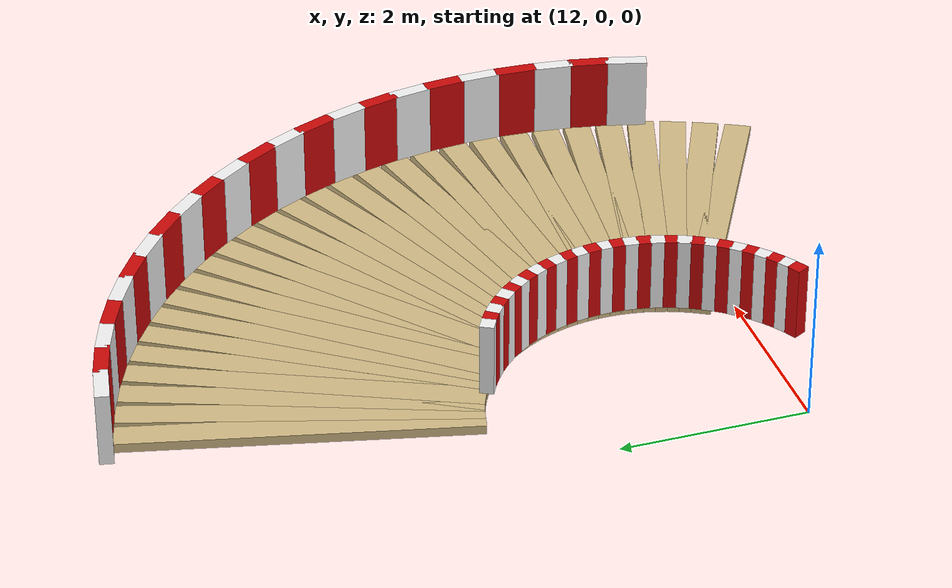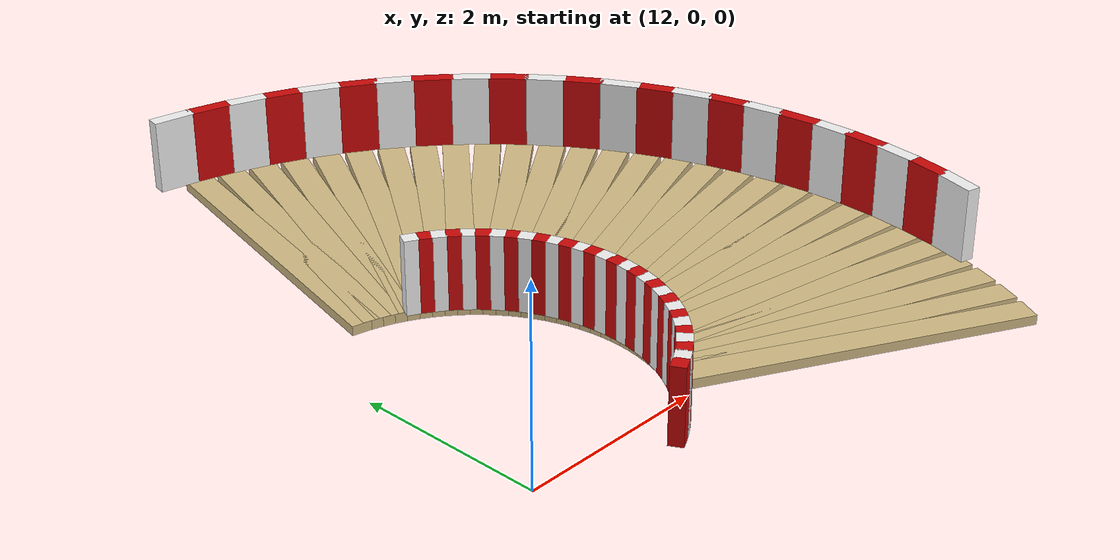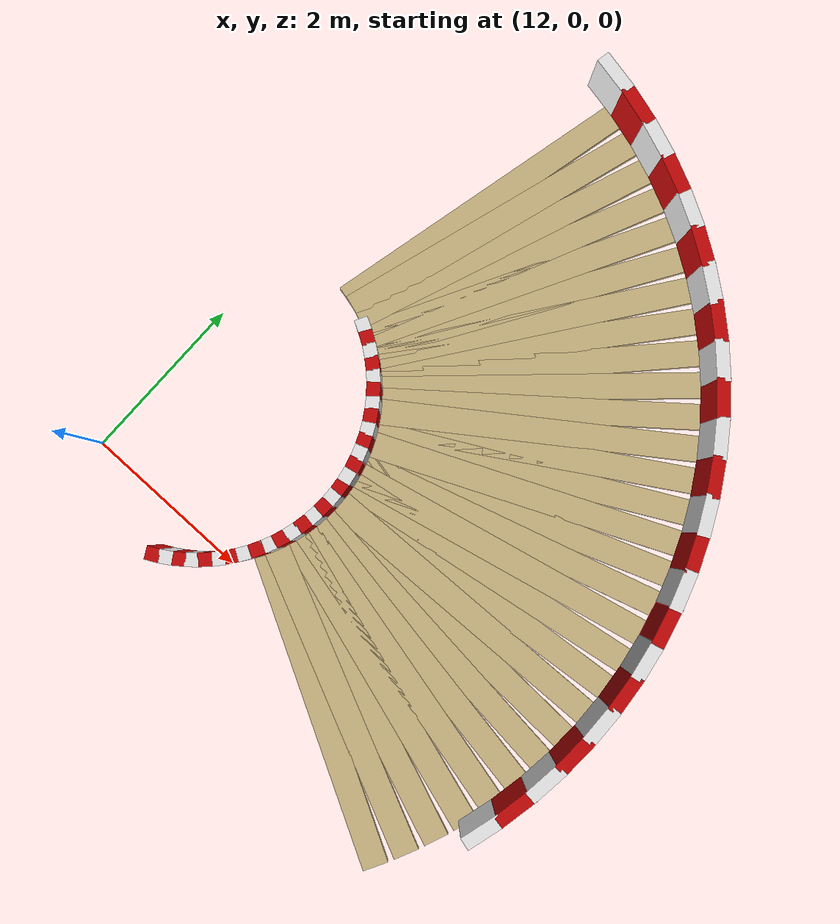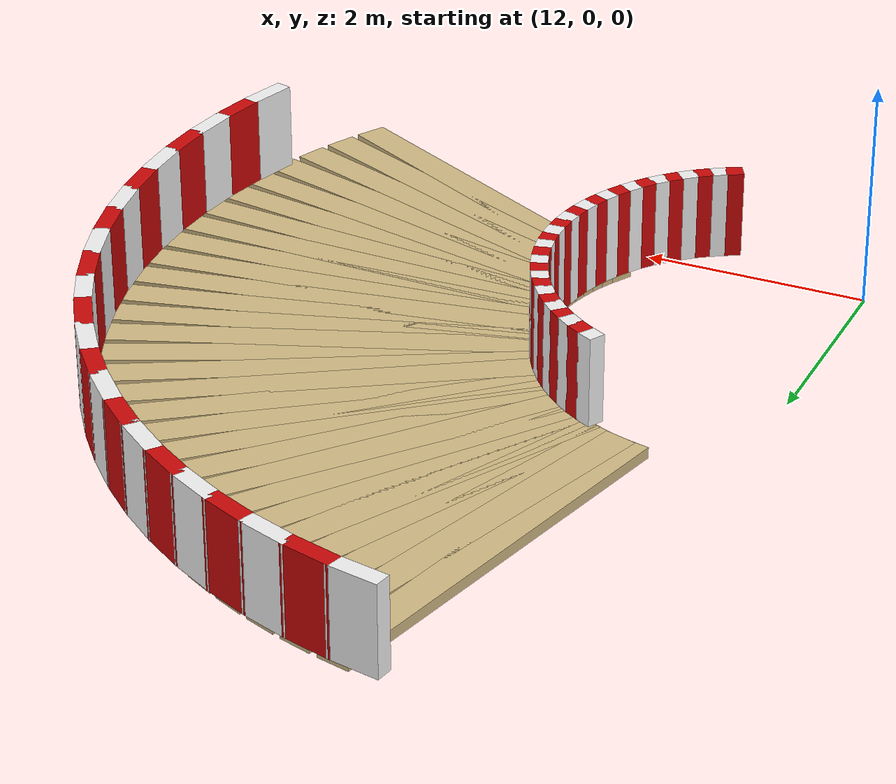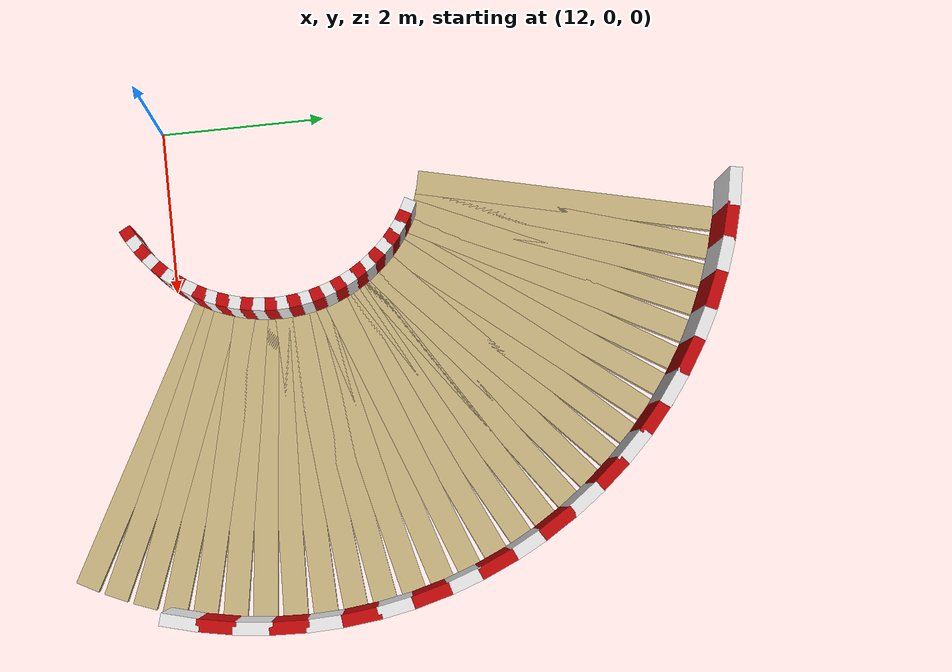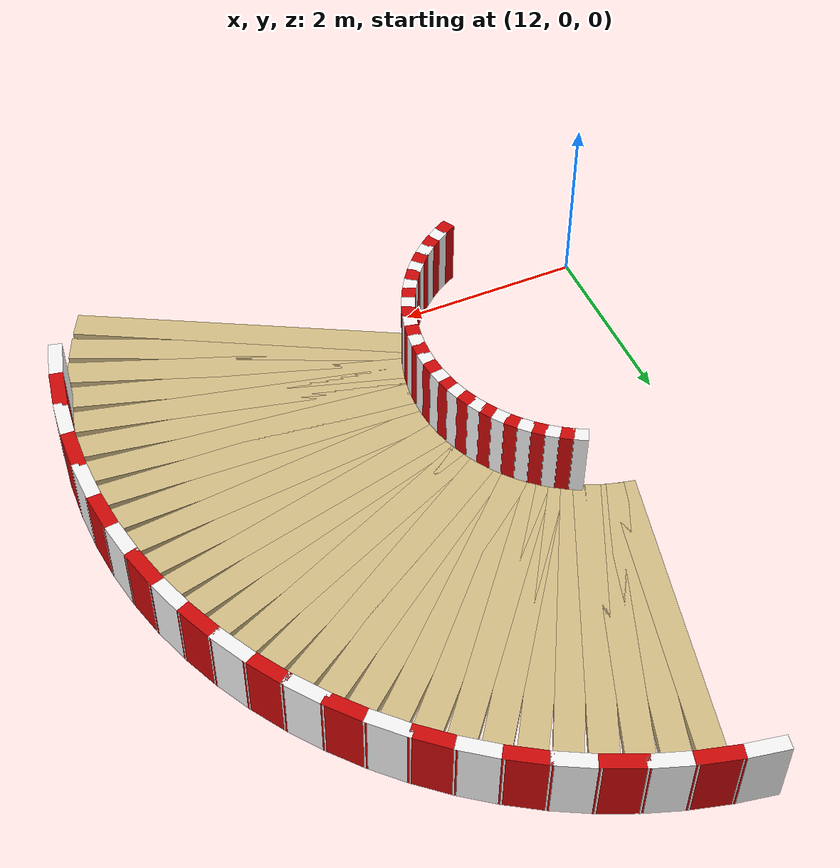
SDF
<sdf version="1.6">
 <world name="evrenos_teknofest_2026">
  <include><uri>model://sun</uri></include>
  <model name="main_course">
   <static>true</static>
   <link name="right_turn_road_16">
    <pose>15.807250 -0.517750 -0.050000 0.000000 0.000000 1.079922</pose>
    <collision name="right_turn_road_16_collision">
     <geometry><box><size>0.294500 3.750000 0.100000</size></box></geometry>
    </collision>
    <visual name="right_turn_road_16_visual">
     <geometry><box><size>0.294500 3.750000 0.100000</size></box></geometry>
     <material><ambient>0.82 0.73 0.52 1</ambient><diffuse>0.82 0.73 0.52 1</diffuse></material>
    </visual>
   </link>
   <link name="right_turn_road_17">
    <pose>15.915750 -0.297625 -0.050000 0.000000 0.000000 1.145372</pose>
    <collision name="right_turn_road_17_collision">
     <geometry><box><size>0.294500 3.750000 0.100000</size></box></geometry>
    </collision>
    <visual name="right_turn_road_17_visual">
     <geometry><box><size>0.294500 3.750000 0.100000</size></box></geometry>
     <material><ambient>0.82 0.73 0.52 1</ambient><diffuse>0.82 0.73 0.52 1</diffuse></material>
    </visual>
   </link>
   <link name="right_turn_road_18">
    <pose>16.009625 -0.071000 -0.050000 0.000000 0.000000 1.210822</pose>
    <collision name="right_turn_road_18_collision">
     <geometry><box><size>0.294500 3.750000 0.100000</size></box></geometry>
    </collision>
    <visual name="right_turn_road_18_visual">
     <geometry><box><size>0.294500 3.750000 0.100000</size></box></geometry>
     <material><ambient>0.82 0.73 0.52 1</ambient><diffuse>0.82 0.73 0.52 1</diffuse></material>
    </visual>
   </link>
   <link name="right_turn_road_19">
    <pose>16.088500 0.161375 -0.050000 0.000000 0.000000 1.276272</pose>
    <collision name="right_turn_road_19_collision">
     <geometry><box><size>0.294500 3.750000 0.100000</size></box></geometry>
    </collision>
    <visual name="right_turn_road_19_visual">
     <geometry><box><size>0.294500 3.750000 0.100000</size></box></geometry>
     <material><ambient>0.82 0.73 0.52 1</ambient><diffuse>0.82 0.73 0.52 1</diffuse></material>
    </visual>
   </link>
   <link name="right_turn_road_20">
    <pose>16.152000 0.398500 -0.050000 0.000000 0.000000 1.341722</pose>
    <collision name="right_turn_road_20_collision">
     <geometry><box><size>0.294500 3.750000 0.100000</size></box></geometry>
    </collision>
    <visual name="right_turn_road_20_visual">
     <geometry><box><size>0.294500 3.750000 0.100000</size></box></geometry>
     <material><ambient>0.82 0.73 0.52 1</ambient><diffuse>0.82 0.73 0.52 1</diffuse></material>
    </visual>
   </link>
   <link name="right_turn_road_21">
    <pose>16.199875 0.639125 -0.050000 0.000000 0.000000 1.407172</pose>
    <collision name="right_turn_road_21_collision">
     <geometry><box><size>0.294500 3.750000 0.100000</size></box></geometry>
    </collision>
    <visual name="right_turn_road_21_visual">
     <geometry><box><size>0.294500 3.750000 0.100000</size></box></geometry>
     <material><ambient>0.82 0.73 0.52 1</ambient><diffuse>0.82 0.73 0.52 1</diffuse></material>
    </visual>
   </link>
   <link name="right_turn_road_22">
    <pose>16.232000 0.882375 -0.050000 0.000000 0.000000 1.472622</pose>
    <collision name="right_turn_road_22_collision">
     <geometry><box><size>0.294500 3.750000 0.100000</size></box></geometry>
    </collision>
    <visual name="right_turn_road_22_visual">
     <geometry><box><size>0.294500 3.750000 0.100000</size></box></geometry>
     <material><ambient>0.82 0.73 0.52 1</ambient><diffuse>0.82 0.73 0.52 1</diffuse></material>
    </visual>
   </link>
   <link name="right_turn_road_23">
    <pose>16.248000 1.127250 -0.050000 0.000000 0.000000 1.538071</pose>
    <collision name="right_turn_road_23_collision">
     <geometry><box><size>0.294500 3.750000 0.100000</size></box></geometry>
    </collision>
    <visual name="right_turn_road_23_visual">
     <geometry><box><size>0.294500 3.750000 0.100000</size></box></geometry>
     <material><ambient>0.82 0.73 0.52 1</ambient><diffuse>0.82 0.73 0.52 1</diffuse></material>
    </visual>
   </link>
   <link name="right_turn_road_24">
    <pose>16.248000 1.372750 -0.050000 0.000000 0.000000 1.603521</pose>
    <collision name="right_turn_road_24_collision">
     <geometry><box><size>0.294500 3.750000 0.100000</size></box></geometry>
    </collision>
    <visual name="right_turn_road_24_visual">
     <geometry><box><size>0.294500 3.750000 0.100000</size></box></geometry>
     <material><ambient>0.82 0.73 0.52 1</ambient><diffuse>0.82 0.73 0.52 1</diffuse></material>
    </visual>
   </link>
   <link name="right_turn_road_25">
    <pose>16.232000 1.617625 -0.050000 0.000000 0.000000 1.668971</pose>
    <collision name="right_turn_road_25_collision">
     <geometry><box><size>0.294500 3.750000 0.100000</size></box></geometry>
    </collision>
    <visual name="right_turn_road_25_visual">
     <geometry><box><size>0.294500 3.750000 0.100000</size></box></geometry>
     <material><ambient>0.82 0.73 0.52 1</ambient><diffuse>0.82 0.73 0.52 1</diffuse></material>
    </visual>
   </link>
   <link name="right_turn_road_26">
    <pose>16.199875 1.860875 -0.050000 0.000000 0.000000 1.734421</pose>
    <collision name="right_turn_road_26_collision">
     <geometry><box><size>0.294500 3.750000 0.100000</size></box></geometry>
    </collision>
    <visual name="right_turn_road_26_visual">
     <geometry><box><size>0.294500 3.750000 0.100000</size></box></geometry>
     <material><ambient>0.82 0.73 0.52 1</ambient><diffuse>0.82 0.73 0.52 1</diffuse></material>
    </visual>
   </link>
   <link name="right_turn_road_27">
    <pose>16.152000 2.101500 -0.050000 0.000000 0.000000 1.799871</pose>
    <collision name="right_turn_road_27_collision">
     <geometry><box><size>0.294500 3.750000 0.100000</size></box></geometry>
    </collision>
    <visual name="right_turn_road_27_visual">
     <geometry><box><size>0.294500 3.750000 0.100000</size></box></geometry>
     <material><ambient>0.82 0.73 0.52 1</ambient><diffuse>0.82 0.73 0.52 1</diffuse></material>
    </visual>
   </link>
   <link name="right_turn_road_28">
    <pose>16.088500 2.338625 -0.050000 0.000000 0.000000 1.865321</pose>
    <collision name="right_turn_road_28_collision">
     <geometry><box><size>0.294500 3.750000 0.100000</size></box></geometry>
    </collision>
    <visual name="right_turn_road_28_visual">
     <geometry><box><size>0.294500 3.750000 0.100000</size></box></geometry>
     <material><ambient>0.82 0.73 0.52 1</ambient><diffuse>0.82 0.73 0.52 1</diffuse></material>
    </visual>
   </link>
   <link name="right_turn_road_29">
    <pose>16.009625 2.571000 -0.050000 0.000000 0.000000 1.930770</pose>
    <collision name="right_turn_road_29_collision">
     <geometry><box><size>0.294500 3.750000 0.100000</size></box></geometry>
    </collision>
    <visual name="right_turn_road_29_visual">
     <geometry><box><size>0.294500 3.750000 0.100000</size></box></geometry>
     <material><ambient>0.82 0.73 0.52 1</ambient><diffuse>0.82 0.73 0.52 1</diffuse></material>
    </visual>
   </link>
   <link name="right_turn_road_30">
    <pose>15.915750 2.797625 -0.050000 0.000000 0.000000 1.996220</pose>
    <collision name="right_turn_road_30_collision">
     <geometry><box><size>0.294500 3.750000 0.100000</size></box></geometry>
    </collision>
    <visual name="right_turn_road_30_visual">
     <geometry><box><size>0.294500 3.750000 0.100000</size></box></geometry>
     <material><ambient>0.82 0.73 0.52 1</ambient><diffuse>0.82 0.73 0.52 1</diffuse></material>
    </visual>
   </link>
   <link name="right_turn_road_31">
    <pose>15.807250 3.017750 -0.050000 0.000000 0.000000 2.061670</pose>
    <collision name="right_turn_road_31_collision">
     <geometry><box><size>0.294500 3.750000 0.100000</size></box></geometry>
    </collision>
    <visual name="right_turn_road_31_visual">
     <geometry><box><size>0.294500 3.750000 0.100000</size></box></geometry>
     <material><ambient>0.82 0.73 0.52 1</ambient><diffuse>0.82 0.73 0.52 1</diffuse></material>
    </visual>
   </link>
   <link name="right_turn_road_32">
    <pose>15.684500 3.230250 -0.050000 0.000000 0.000000 2.127120</pose>
    <collision name="right_turn_road_32_collision">
     <geometry><box><size>0.294500 3.750000 0.100000</size></box></geometry>
    </collision>
    <visual name="right_turn_road_32_visual">
     <geometry><box><size>0.294500 3.750000 0.100000</size></box></geometry>
     <material><ambient>0.82 0.73 0.52 1</ambient><diffuse>0.82 0.73 0.52 1</diffuse></material>
    </visual>
   </link>
   <link name="right_turn_road_33">
    <pose>15.548125 3.434250 -0.050000 0.000000 0.000000 2.192570</pose>
    <collision name="right_turn_road_33_collision">
     <geometry><box><size>0.294500 3.750000 0.100000</size></box></geometry>
    </collision>
    <visual name="right_turn_road_33_visual">
     <geometry><box><size>0.294500 3.750000 0.100000</size></box></geometry>
     <material><ambient>0.82 0.73 0.52 1</ambient><diffuse>0.82 0.73 0.52 1</diffuse></material>
    </visual>
   </link>
   <link name="right_turn_road_34">
    <pose>15.398750 3.629000 -0.050000 0.000000 0.000000 2.258020</pose>
    <collision name="right_turn_road_34_collision">
     <geometry><box><size>0.294500 3.750000 0.100000</size></box></geometry>
    </collision>
    <visual name="right_turn_road_34_visual">
     <geometry><box><size>0.294500 3.750000 0.100000</size></box></geometry>
     <material><ambient>0.82 0.73 0.52 1</ambient><diffuse>0.82 0.73 0.52 1</diffuse></material>
    </visual>
   </link>
   <link name="right_turn_road_35">
    <pose>15.237000 3.813500 -0.050000 0.000000 0.000000 2.323470</pose>
    <collision name="right_turn_road_35_collision">
     <geometry><box><size>0.294500 3.750000 0.100000</size></box></geometry>
    </collision>
    <visual name="right_turn_road_35_visual">
     <geometry><box><size>0.294500 3.750000 0.100000</size></box></geometry>
     <material><ambient>0.82 0.73 0.52 1</ambient><diffuse>0.82 0.73 0.52 1</diffuse></material>
    </visual>
   </link>
   <link name="right_turn_road_36">
    <pose>15.063500 3.987000 -0.050000 0.000000 0.000000 2.388919</pose>
    <collision name="right_turn_road_36_collision">
     <geometry><box><size>0.294500 3.750000 0.100000</size></box></geometry>
    </collision>
    <visual name="right_turn_road_36_visual">
     <geometry><box><size>0.294500 3.750000 0.100000</size></box></geometry>
     <material><ambient>0.82 0.73 0.52 1</ambient><diffuse>0.82 0.73 0.52 1</diffuse></material>
    </visual>
   </link>
   <link name="right_turn_road_37">
    <pose>14.879000 4.148750 -0.050000 0.000000 0.000000 2.454369</pose>
    <collision name="right_turn_road_37_collision">
     <geometry><box><size>0.294500 3.750000 0.100000</size></box></geometry>
    </collision>
    <visual name="right_turn_road_37_visual">
     <geometry><box><size>0.294500 3.750000 0.100000</size></box></geometry>
     <material><ambient>0.82 0.73 0.52 1</ambient><diffuse>0.82 0.73 0.52 1</diffuse></material>
    </visual>
   </link>
   <link name="right_turn_road_38">
    <pose>14.684250 4.298125 -0.050000 0.000000 0.000000 2.519819</pose>
    <collision name="right_turn_road_38_collision">
     <geometry><box><size>0.294500 3.750000 0.100000</size></box></geometry>
    </collision>
    <visual name="right_turn_road_38_visual">
     <geometry><box><size>0.294500 3.750000 0.100000</size></box></geometry>
     <material><ambient>0.82 0.73 0.52 1</ambient><diffuse>0.82 0.73 0.52 1</diffuse></material>
    </visual>
   </link>
   <link name="right_turn_road_39">
    <pose>14.480250 4.434500 -0.050000 0.000000 0.000000 2.585269</pose>
    <collision name="right_turn_road_39_collision">
     <geometry><box><size>0.294500 3.750000 0.100000</size></box></geometry>
    </collision>
    <visual name="right_turn_road_39_visual">
     <geometry><box><size>0.294500 3.750000 0.100000</size></box></geometry>
     <material><ambient>0.82 0.73 0.52 1</ambient><diffuse>0.82 0.73 0.52 1</diffuse></material>
    </visual>
   </link>
   <link name="right_turn_road_40">
    <pose>14.267750 4.557250 -0.050000 0.000000 0.000000 2.650719</pose>
    <collision name="right_turn_road_40_collision">
     <geometry><box><size>0.294500 3.750000 0.100000</size></box></geometry>
    </collision>
    <visual name="right_turn_road_40_visual">
     <geometry><box><size>0.294500 3.750000 0.100000</size></box></geometry>
     <material><ambient>0.82 0.73 0.52 1</ambient><diffuse>0.82 0.73 0.52 1</diffuse></material>
    </visual>
   </link>
   <link name="right_turn_road_41">
    <pose>14.047625 4.665750 -0.050000 0.000000 0.000000 2.716169</pose>
    <collision name="right_turn_road_41_collision">
     <geometry><box><size>0.294500 3.750000 0.100000</size></box></geometry>
    </collision>
    <visual name="right_turn_road_41_visual">
     <geometry><box><size>0.294500 3.750000 0.100000</size></box></geometry>
     <material><ambient>0.82 0.73 0.52 1</ambient><diffuse>0.82 0.73 0.52 1</diffuse></material>
    </visual>
   </link>
   <link name="right_turn_road_42">
    <pose>13.821000 4.759625 -0.050000 0.000000 0.000000 2.781618</pose>
    <collision name="right_turn_road_42_collision">
     <geometry><box><size>0.294500 3.750000 0.100000</size></box></geometry>
    </collision>
    <visual name="right_turn_road_42_visual">
     <geometry><box><size>0.294500 3.750000 0.100000</size></box></geometry>
     <material><ambient>0.82 0.73 0.52 1</ambient><diffuse>0.82 0.73 0.52 1</diffuse></material>
    </visual>
   </link>
   <link name="right_turn_road_43">
    <pose>13.588625 4.838500 -0.050000 0.000000 0.000000 2.847068</pose>
    <collision name="right_turn_road_43_collision">
     <geometry><box><size>0.294500 3.750000 0.100000</size></box></geometry>
    </collision>
    <visual name="right_turn_road_43_visual">
     <geometry><box><size>0.294500 3.750000 0.100000</size></box></geometry>
     <material><ambient>0.82 0.73 0.52 1</ambient><diffuse>0.82 0.73 0.52 1</diffuse></material>
    </visual>
   </link>
   <link name="right_turn_road_44">
    <pose>13.351500 4.902000 -0.050000 0.000000 0.000000 2.912518</pose>
    <collision name="right_turn_road_44_collision">
     <geometry><box><size>0.294500 3.750000 0.100000</size></box></geometry>
    </collision>
    <visual name="right_turn_road_44_visual">
     <geometry><box><size>0.294500 3.750000 0.100000</size></box></geometry>
     <material><ambient>0.82 0.73 0.52 1</ambient><diffuse>0.82 0.73 0.52 1</diffuse></material>
    </visual>
   </link>
   <link name="right_turn_bar_0_6">
    <pose>13.376125 -0.407750 0.400000 0.000000 0.000000 0.486199</pose>
    <collision name="right_turn_bar_0_6_collision">
     <geometry><box><size>0.154250 0.150000 0.800000</size></box></geometry>
    </collision>
    <visual name="right_turn_bar_0_6_visual">
     <geometry><box><size>0.154250 0.150000 0.800000</size></box></geometry>
     <material><ambient>0.8 0.03 0.03 1</ambient><diffuse>0.8 0.03 0.03 1</diffuse></material>
    </visual>
   </link>
   <link name="right_turn_bar_0_7">
    <pose>13.497500 -0.337625 0.400000 0.000000 0.000000 0.560999</pose>
    <collision name="right_turn_bar_0_7_collision">
     <geometry><box><size>0.154250 0.150000 0.800000</size></box></geometry>
    </collision>
    <visual name="right_turn_bar_0_7_visual">
     <geometry><box><size>0.154250 0.150000 0.800000</size></box></geometry>
     <material><ambient>0.95 0.95 0.95 1</ambient><diffuse>0.95 0.95 0.95 1</diffuse></material>
    </visual>
   </link>
   <link name="right_turn_bar_0_8">
    <pose>13.613375 -0.258625 0.400000 0.000000 0.000000 0.635799</pose>
    <collision name="right_turn_bar_0_8_collision">
     <geometry><box><size>0.154250 0.150000 0.800000</size></box></geometry>
    </collision>
    <visual name="right_turn_bar_0_8_visual">
     <geometry><box><size>0.154250 0.150000 0.800000</size></box></geometry>
     <material><ambient>0.8 0.03 0.03 1</ambient><diffuse>0.8 0.03 0.03 1</diffuse></material>
    </visual>
   </link>
   <link name="right_turn_bar_0_9">
    <pose>13.723000 -0.171250 0.400000 0.000000 0.000000 0.710598</pose>
    <collision name="right_turn_bar_0_9_collision">
     <geometry><box><size>0.154250 0.150000 0.800000</size></box></geometry>
    </collision>
    <visual name="right_turn_bar_0_9_visual">
     <geometry><box><size>0.154250 0.150000 0.800000</size></box></geometry>
     <material><ambient>0.95 0.95 0.95 1</ambient><diffuse>0.95 0.95 0.95 1</diffuse></material>
    </visual>
   </link>
   <link name="right_turn_bar_0_10">
    <pose>13.825875 -0.075875 0.400000 0.000000 0.000000 0.785398</pose>
    <collision name="right_turn_bar_0_10_collision">
     <geometry><box><size>0.154250 0.150000 0.800000</size></box></geometry>
    </collision>
    <visual name="right_turn_bar_0_10_visual">
     <geometry><box><size>0.154250 0.150000 0.800000</size></box></geometry>
     <material><ambient>0.8 0.03 0.03 1</ambient><diffuse>0.8 0.03 0.03 1</diffuse></material>
    </visual>
   </link>
   <link name="right_turn_bar_0_11">
    <pose>13.921250 0.027000 0.400000 0.000000 0.000000 0.860198</pose>
    <collision name="right_turn_bar_0_11_collision">
     <geometry><box><size>0.154250 0.150000 0.800000</size></box></geometry>
    </collision>
    <visual name="right_turn_bar_0_11_visual">
     <geometry><box><size>0.154250 0.150000 0.800000</size></box></geometry>
     <material><ambient>0.95 0.95 0.95 1</ambient><diffuse>0.95 0.95 0.95 1</diffuse></material>
    </visual>
   </link>
   <link name="right_turn_bar_0_12">
    <pose>14.008625 0.136625 0.400000 0.000000 0.000000 0.934998</pose>
    <collision name="right_turn_bar_0_12_collision">
     <geometry><box><size>0.154250 0.150000 0.800000</size></box></geometry>
    </collision>
    <visual name="right_turn_bar_0_12_visual">
     <geometry><box><size>0.154250 0.150000 0.800000</size></box></geometry>
     <material><ambient>0.8 0.03 0.03 1</ambient><diffuse>0.8 0.03 0.03 1</diffuse></material>
    </visual>
   </link>
   <link name="right_turn_bar_0_13">
    <pose>14.087625 0.252500 0.400000 0.000000 0.000000 1.009798</pose>
    <collision name="right_turn_bar_0_13_collision">
     <geometry><box><size>0.154250 0.150000 0.800000</size></box></geometry>
    </collision>
    <visual name="right_turn_bar_0_13_visual">
     <geometry><box><size>0.154250 0.150000 0.800000</size></box></geometry>
     <material><ambient>0.95 0.95 0.95 1</ambient><diffuse>0.95 0.95 0.95 1</diffuse></material>
    </visual>
   </link>
   <link name="right_turn_bar_0_14">
    <pose>14.157750 0.373875 0.400000 0.000000 0.000000 1.084597</pose>
    <collision name="right_turn_bar_0_14_collision">
     <geometry><box><size>0.154250 0.150000 0.800000</size></box></geometry>
    </collision>
    <visual name="right_turn_bar_0_14_visual">
     <geometry><box><size>0.154250 0.150000 0.800000</size></box></geometry>
     <material><ambient>0.8 0.03 0.03 1</ambient><diffuse>0.8 0.03 0.03 1</diffuse></material>
    </visual>
   </link>
   <link name="right_turn_bar_0_15">
    <pose>14.218500 0.500250 0.400000 0.000000 0.000000 1.159397</pose>
    <collision name="right_turn_bar_0_15_collision">
     <geometry><box><size>0.154250 0.150000 0.800000</size></box></geometry>
    </collision>
    <visual name="right_turn_bar_0_15_visual">
     <geometry><box><size>0.154250 0.150000 0.800000</size></box></geometry>
     <material><ambient>0.95 0.95 0.95 1</ambient><diffuse>0.95 0.95 0.95 1</diffuse></material>
    </visual>
   </link>
   <link name="right_turn_bar_0_16">
    <pose>14.269750 0.630750 0.400000 0.000000 0.000000 1.234197</pose>
    <collision name="right_turn_bar_0_16_collision">
     <geometry><box><size>0.154250 0.150000 0.800000</size></box></geometry>
    </collision>
    <visual name="right_turn_bar_0_16_visual">
     <geometry><box><size>0.154250 0.150000 0.800000</size></box></geometry>
     <material><ambient>0.8 0.03 0.03 1</ambient><diffuse>0.8 0.03 0.03 1</diffuse></material>
    </visual>
   </link>
   <link name="right_turn_bar_0_17">
    <pose>14.311125 0.764750 0.400000 0.000000 0.000000 1.308997</pose>
    <collision name="right_turn_bar_0_17_collision">
     <geometry><box><size>0.154250 0.150000 0.800000</size></box></geometry>
    </collision>
    <visual name="right_turn_bar_0_17_visual">
     <geometry><box><size>0.154250 0.150000 0.800000</size></box></geometry>
     <material><ambient>0.95 0.95 0.95 1</ambient><diffuse>0.95 0.95 0.95 1</diffuse></material>
    </visual>
   </link>
   <link name="right_turn_bar_0_18">
    <pose>14.342250 0.901375 0.400000 0.000000 0.000000 1.383797</pose>
    <collision name="right_turn_bar_0_18_collision">
     <geometry><box><size>0.154250 0.150000 0.800000</size></box></geometry>
    </collision>
    <visual name="right_turn_bar_0_18_visual">
     <geometry><box><size>0.154250 0.150000 0.800000</size></box></geometry>
     <material><ambient>0.8 0.03 0.03 1</ambient><diffuse>0.8 0.03 0.03 1</diffuse></material>
    </visual>
   </link>
   <link name="right_turn_bar_0_19">
    <pose>14.363250 1.040125 0.400000 0.000000 0.000000 1.458597</pose>
    <collision name="right_turn_bar_0_19_collision">
     <geometry><box><size>0.154250 0.150000 0.800000</size></box></geometry>
    </collision>
    <visual name="right_turn_bar_0_19_visual">
     <geometry><box><size>0.154250 0.150000 0.800000</size></box></geometry>
     <material><ambient>0.95 0.95 0.95 1</ambient><diffuse>0.95 0.95 0.95 1</diffuse></material>
    </visual>
   </link>
   <link name="right_turn_bar_0_20">
    <pose>14.373750 1.179875 0.400000 0.000000 0.000000 1.533396</pose>
    <collision name="right_turn_bar_0_20_collision">
     <geometry><box><size>0.154250 0.150000 0.800000</size></box></geometry>
    </collision>
    <visual name="right_turn_bar_0_20_visual">
     <geometry><box><size>0.154250 0.150000 0.800000</size></box></geometry>
     <material><ambient>0.8 0.03 0.03 1</ambient><diffuse>0.8 0.03 0.03 1</diffuse></material>
    </visual>
   </link>
   <link name="right_turn_bar_0_21">
    <pose>14.373750 1.320125 0.400000 0.000000 0.000000 1.608196</pose>
    <collision name="right_turn_bar_0_21_collision">
     <geometry><box><size>0.154250 0.150000 0.800000</size></box></geometry>
    </collision>
    <visual name="right_turn_bar_0_21_visual">
     <geometry><box><size>0.154250 0.150000 0.800000</size></box></geometry>
     <material><ambient>0.95 0.95 0.95 1</ambient><diffuse>0.95 0.95 0.95 1</diffuse></material>
    </visual>
   </link>
   <link name="right_turn_bar_0_22">
    <pose>14.363250 1.459875 0.400000 0.000000 0.000000 1.682996</pose>
    <collision name="right_turn_bar_0_22_collision">
     <geometry><box><size>0.154250 0.150000 0.800000</size></box></geometry>
    </collision>
    <visual name="right_turn_bar_0_22_visual">
     <geometry><box><size>0.154250 0.150000 0.800000</size></box></geometry>
     <material><ambient>0.8 0.03 0.03 1</ambient><diffuse>0.8 0.03 0.03 1</diffuse></material>
    </visual>
   </link>
   <link name="right_turn_bar_0_23">
    <pose>14.342250 1.598625 0.400000 0.000000 0.000000 1.757796</pose>
    <collision name="right_turn_bar_0_23_collision">
     <geometry><box><size>0.154250 0.150000 0.800000</size></box></geometry>
    </collision>
    <visual name="right_turn_bar_0_23_visual">
     <geometry><box><size>0.154250 0.150000 0.800000</size></box></geometry>
     <material><ambient>0.95 0.95 0.95 1</ambient><diffuse>0.95 0.95 0.95 1</diffuse></material>
    </visual>
   </link>
   <link name="right_turn_bar_0_24">
    <pose>14.311125 1.735250 0.400000 0.000000 0.000000 1.832596</pose>
    <collision name="right_turn_bar_0_24_collision">
     <geometry><box><size>0.154250 0.150000 0.800000</size></box></geometry>
    </collision>
    <visual name="right_turn_bar_0_24_visual">
     <geometry><box><size>0.154250 0.150000 0.800000</size></box></geometry>
     <material><ambient>0.8 0.03 0.03 1</ambient><diffuse>0.8 0.03 0.03 1</diffuse></material>
    </visual>
   </link>
   <link name="right_turn_bar_0_25">
    <pose>14.269750 1.869250 0.400000 0.000000 0.000000 1.907396</pose>
    <collision name="right_turn_bar_0_25_collision">
     <geometry><box><size>0.154250 0.150000 0.800000</size></box></geometry>
    </collision>
    <visual name="right_turn_bar_0_25_visual">
     <geometry><box><size>0.154250 0.150000 0.800000</size></box></geometry>
     <material><ambient>0.95 0.95 0.95 1</ambient><diffuse>0.95 0.95 0.95 1</diffuse></material>
    </visual>
   </link>
   <link name="right_turn_bar_0_26">
    <pose>14.218500 1.999750 0.400000 0.000000 0.000000 1.982195</pose>
    <collision name="right_turn_bar_0_26_collision">
     <geometry><box><size>0.154250 0.150000 0.800000</size></box></geometry>
    </collision>
    <visual name="right_turn_bar_0_26_visual">
     <geometry><box><size>0.154250 0.150000 0.800000</size></box></geometry>
     <material><ambient>0.8 0.03 0.03 1</ambient><diffuse>0.8 0.03 0.03 1</diffuse></material>
    </visual>
   </link>
   <link name="right_turn_bar_0_27">
    <pose>14.157750 2.126125 0.400000 0.000000 0.000000 2.056995</pose>
    <collision name="right_turn_bar_0_27_collision">
     <geometry><box><size>0.154250 0.150000 0.800000</size></box></geometry>
    </collision>
    <visual name="right_turn_bar_0_27_visual">
     <geometry><box><size>0.154250 0.150000 0.800000</size></box></geometry>
     <material><ambient>0.95 0.95 0.95 1</ambient><diffuse>0.95 0.95 0.95 1</diffuse></material>
    </visual>
   </link>
   <link name="right_turn_bar_0_28">
    <pose>14.087625 2.247500 0.400000 0.000000 0.000000 2.131795</pose>
    <collision name="right_turn_bar_0_28_collision">
     <geometry><box><size>0.154250 0.150000 0.800000</size></box></geometry>
    </collision>
    <visual name="right_turn_bar_0_28_visual">
     <geometry><box><size>0.154250 0.150000 0.800000</size></box></geometry>
     <material><ambient>0.8 0.03 0.03 1</ambient><diffuse>0.8 0.03 0.03 1</diffuse></material>
    </visual>
   </link>
   <link name="right_turn_bar_0_29">
    <pose>14.008625 2.363375 0.400000 0.000000 0.000000 2.206595</pose>
    <collision name="right_turn_bar_0_29_collision">
     <geometry><box><size>0.154250 0.150000 0.800000</size></box></geometry>
    </collision>
    <visual name="right_turn_bar_0_29_visual">
     <geometry><box><size>0.154250 0.150000 0.800000</size></box></geometry>
     <material><ambient>0.95 0.95 0.95 1</ambient><diffuse>0.95 0.95 0.95 1</diffuse></material>
    </visual>
   </link>
   <link name="right_turn_bar_0_30">
    <pose>13.921250 2.473000 0.400000 0.000000 0.000000 2.281395</pose>
    <collision name="right_turn_bar_0_30_collision">
     <geometry><box><size>0.154250 0.150000 0.800000</size></box></geometry>
    </collision>
    <visual name="right_turn_bar_0_30_visual">
     <geometry><box><size>0.154250 0.150000 0.800000</size></box></geometry>
     <material><ambient>0.8 0.03 0.03 1</ambient><diffuse>0.8 0.03 0.03 1</diffuse></material>
    </visual>
   </link>
   <link name="right_turn_bar_0_31">
    <pose>13.825875 2.575875 0.400000 0.000000 0.000000 2.356194</pose>
    <collision name="right_turn_bar_0_31_collision">
     <geometry><box><size>0.154250 0.150000 0.800000</size></box></geometry>
    </collision>
    <visual name="right_turn_bar_0_31_visual">
     <geometry><box><size>0.154250 0.150000 0.800000</size></box></geometry>
     <material><ambient>0.95 0.95 0.95 1</ambient><diffuse>0.95 0.95 0.95 1</diffuse></material>
    </visual>
   </link>
   <link name="right_turn_bar_0_32">
    <pose>13.723000 2.671250 0.400000 0.000000 0.000000 2.430994</pose>
    <collision name="right_turn_bar_0_32_collision">
     <geometry><box><size>0.154250 0.150000 0.800000</size></box></geometry>
    </collision>
    <visual name="right_turn_bar_0_32_visual">
     <geometry><box><size>0.154250 0.150000 0.800000</size></box></geometry>
     <material><ambient>0.8 0.03 0.03 1</ambient><diffuse>0.8 0.03 0.03 1</diffuse></material>
    </visual>
   </link>
   <link name="right_turn_bar_0_33">
    <pose>13.613375 2.758625 0.400000 0.000000 0.000000 2.505794</pose>
    <collision name="right_turn_bar_0_33_collision">
     <geometry><box><size>0.154250 0.150000 0.800000</size></box></geometry>
    </collision>
    <visual name="right_turn_bar_0_33_visual">
     <geometry><box><size>0.154250 0.150000 0.800000</size></box></geometry>
     <material><ambient>0.95 0.95 0.95 1</ambient><diffuse>0.95 0.95 0.95 1</diffuse></material>
    </visual>
   </link>
   <link name="right_turn_bar_0_34">
    <pose>13.497500 2.837625 0.400000 0.000000 0.000000 2.580594</pose>
    <collision name="right_turn_bar_0_34_collision">
     <geometry><box><size>0.154250 0.150000 0.800000</size></box></geometry>
    </collision>
    <visual name="right_turn_bar_0_34_visual">
     <geometry><box><size>0.154250 0.150000 0.800000</size></box></geometry>
     <material><ambient>0.8 0.03 0.03 1</ambient><diffuse>0.8 0.03 0.03 1</diffuse></material>
    </visual>
   </link>
   <link name="right_turn_bar_0_35">
    <pose>13.376125 2.907750 0.400000 0.000000 0.000000 2.655394</pose>
    <collision name="right_turn_bar_0_35_collision">
     <geometry><box><size>0.154250 0.150000 0.800000</size></box></geometry>
    </collision>
    <visual name="right_turn_bar_0_35_visual">
     <geometry><box><size>0.154250 0.150000 0.800000</size></box></geometry>
     <material><ambient>0.95 0.95 0.95 1</ambient><diffuse>0.95 0.95 0.95 1</diffuse></material>
    </visual>
   </link>
   <link name="right_turn_bar_1_17">
    <pose>17.933375 -0.205875 0.400000 0.000000 0.000000 1.308997</pose>
    <collision name="right_turn_bar_1_17_collision">
     <geometry><box><size>0.462875 0.150000 0.800000</size></box></geometry>
    </collision>
    <visual name="right_turn_bar_1_17_visual">
     <geometry><box><size>0.462875 0.150000 0.800000</size></box></geometry>
     <material><ambient>0.95 0.95 0.95 1</ambient><diffuse>0.95 0.95 0.95 1</diffuse></material>
    </visual>
   </link>
   <link name="right_turn_bar_1_18">
    <pose>18.026875 0.204250 0.400000 0.000000 0.000000 1.383797</pose>
    <collision name="right_turn_bar_1_18_collision">
     <geometry><box><size>0.462875 0.150000 0.800000</size></box></geometry>
    </collision>
    <visual name="right_turn_bar_1_18_visual">
     <geometry><box><size>0.462875 0.150000 0.800000</size></box></geometry>
     <material><ambient>0.8 0.03 0.03 1</ambient><diffuse>0.8 0.03 0.03 1</diffuse></material>
    </visual>
   </link>
   <link name="right_turn_bar_1_19">
    <pose>18.089625 0.620250 0.400000 0.000000 0.000000 1.458597</pose>
    <collision name="right_turn_bar_1_19_collision">
     <geometry><box><size>0.462875 0.150000 0.800000</size></box></geometry>
    </collision>
    <visual name="right_turn_bar_1_19_visual">
     <geometry><box><size>0.462875 0.150000 0.800000</size></box></geometry>
     <material><ambient>0.95 0.95 0.95 1</ambient><diffuse>0.95 0.95 0.95 1</diffuse></material>
    </visual>
   </link>
   <link name="right_turn_bar_1_20">
    <pose>18.121125 1.039625 0.400000 0.000000 0.000000 1.533396</pose>
    <collision name="right_turn_bar_1_20_collision">
     <geometry><box><size>0.462875 0.150000 0.800000</size></box></geometry>
    </collision>
    <visual name="right_turn_bar_1_20_visual">
     <geometry><box><size>0.462875 0.150000 0.800000</size></box></geometry>
     <material><ambient>0.8 0.03 0.03 1</ambient><diffuse>0.8 0.03 0.03 1</diffuse></material>
    </visual>
   </link>
   <link name="right_turn_bar_1_21">
    <pose>18.121125 1.460375 0.400000 0.000000 0.000000 1.608196</pose>
    <collision name="right_turn_bar_1_21_collision">
     <geometry><box><size>0.462875 0.150000 0.800000</size></box></geometry>
    </collision>
    <visual name="right_turn_bar_1_21_visual">
     <geometry><box><size>0.462875 0.150000 0.800000</size></box></geometry>
     <material><ambient>0.95 0.95 0.95 1</ambient><diffuse>0.95 0.95 0.95 1</diffuse></material>
    </visual>
   </link>
   <link name="right_turn_bar_1_22">
    <pose>18.089625 1.879750 0.400000 0.000000 0.000000 1.682996</pose>
    <collision name="right_turn_bar_1_22_collision">
     <geometry><box><size>0.462875 0.150000 0.800000</size></box></geometry>
    </collision>
    <visual name="right_turn_bar_1_22_visual">
     <geometry><box><size>0.462875 0.150000 0.800000</size></box></geometry>
     <material><ambient>0.8 0.03 0.03 1</ambient><diffuse>0.8 0.03 0.03 1</diffuse></material>
    </visual>
   </link>
   <link name="right_turn_bar_1_23">
    <pose>18.026875 2.295750 0.400000 0.000000 0.000000 1.757796</pose>
    <collision name="right_turn_bar_1_23_collision">
     <geometry><box><size>0.462875 0.150000 0.800000</size></box></geometry>
    </collision>
    <visual name="right_turn_bar_1_23_visual">
     <geometry><box><size>0.462875 0.150000 0.800000</size></box></geometry>
     <material><ambient>0.95 0.95 0.95 1</ambient><diffuse>0.95 0.95 0.95 1</diffuse></material>
    </visual>
   </link>
   <link name="right_turn_bar_1_24">
    <pose>17.933375 2.705875 0.400000 0.000000 0.000000 1.832596</pose>
    <collision name="right_turn_bar_1_24_collision">
     <geometry><box><size>0.462875 0.150000 0.800000</size></box></geometry>
    </collision>
    <visual name="right_turn_bar_1_24_visual">
     <geometry><box><size>0.462875 0.150000 0.800000</size></box></geometry>
     <material><ambient>0.8 0.03 0.03 1</ambient><diffuse>0.8 0.03 0.03 1</diffuse></material>
    </visual>
   </link>
   <link name="right_turn_bar_1_25">
    <pose>17.809375 3.107875 0.400000 0.000000 0.000000 1.907396</pose>
    <collision name="right_turn_bar_1_25_collision">
     <geometry><box><size>0.462875 0.150000 0.800000</size></box></geometry>
    </collision>
    <visual name="right_turn_bar_1_25_visual">
     <geometry><box><size>0.462875 0.150000 0.800000</size></box></geometry>
     <material><ambient>0.95 0.95 0.95 1</ambient><diffuse>0.95 0.95 0.95 1</diffuse></material>
    </visual>
   </link>
   <link name="right_turn_bar_1_26">
    <pose>17.655625 3.499375 0.400000 0.000000 0.000000 1.982195</pose>
    <collision name="right_turn_bar_1_26_collision">
     <geometry><box><size>0.462875 0.150000 0.800000</size></box></geometry>
    </collision>
    <visual name="right_turn_bar_1_26_visual">
     <geometry><box><size>0.462875 0.150000 0.800000</size></box></geometry>
     <material><ambient>0.8 0.03 0.03 1</ambient><diffuse>0.8 0.03 0.03 1</diffuse></material>
    </visual>
   </link>
   <link name="right_turn_bar_1_27">
    <pose>17.473125 3.878375 0.400000 0.000000 0.000000 2.056995</pose>
    <collision name="right_turn_bar_1_27_collision">
     <geometry><box><size>0.462875 0.150000 0.800000</size></box></geometry>
    </collision>
    <visual name="right_turn_bar_1_27_visual">
     <geometry><box><size>0.462875 0.150000 0.800000</size></box></geometry>
     <material><ambient>0.95 0.95 0.95 1</ambient><diffuse>0.95 0.95 0.95 1</diffuse></material>
    </visual>
   </link>
   <link name="right_turn_bar_1_28">
    <pose>17.262875 4.242625 0.400000 0.000000 0.000000 2.131795</pose>
    <collision name="right_turn_bar_1_28_collision">
     <geometry><box><size>0.462875 0.150000 0.800000</size></box></geometry>
    </collision>
    <visual name="right_turn_bar_1_28_visual">
     <geometry><box><size>0.462875 0.150000 0.800000</size></box></geometry>
     <material><ambient>0.8 0.03 0.03 1</ambient><diffuse>0.8 0.03 0.03 1</diffuse></material>
    </visual>
   </link>
   <link name="right_turn_bar_1_29">
    <pose>17.025875 4.590250 0.400000 0.000000 0.000000 2.206595</pose>
    <collision name="right_turn_bar_1_29_collision">
     <geometry><box><size>0.462875 0.150000 0.800000</size></box></geometry>
    </collision>
    <visual name="right_turn_bar_1_29_visual">
     <geometry><box><size>0.462875 0.150000 0.800000</size></box></geometry>
     <material><ambient>0.95 0.95 0.95 1</ambient><diffuse>0.95 0.95 0.95 1</diffuse></material>
    </visual>
   </link>
   <link name="right_turn_bar_1_30">
    <pose>16.763625 4.919125 0.400000 0.000000 0.000000 2.281395</pose>
    <collision name="right_turn_bar_1_30_collision">
     <geometry><box><size>0.462875 0.150000 0.800000</size></box></geometry>
    </collision>
    <visual name="right_turn_bar_1_30_visual">
     <geometry><box><size>0.462875 0.150000 0.800000</size></box></geometry>
     <material><ambient>0.8 0.03 0.03 1</ambient><diffuse>0.8 0.03 0.03 1</diffuse></material>
    </visual>
   </link>
   <link name="right_turn_bar_1_31">
    <pose>16.477500 5.227500 0.400000 0.000000 0.000000 2.356194</pose>
    <collision name="right_turn_bar_1_31_collision">
     <geometry><box><size>0.462875 0.150000 0.800000</size></box></geometry>
    </collision>
    <visual name="right_turn_bar_1_31_visual">
     <geometry><box><size>0.462875 0.150000 0.800000</size></box></geometry>
     <material><ambient>0.95 0.95 0.95 1</ambient><diffuse>0.95 0.95 0.95 1</diffuse></material>
    </visual>
   </link>
   <link name="right_turn_bar_1_32">
    <pose>16.169125 5.513625 0.400000 0.000000 0.000000 2.430994</pose>
    <collision name="right_turn_bar_1_32_collision">
     <geometry><box><size>0.462875 0.150000 0.800000</size></box></geometry>
    </collision>
    <visual name="right_turn_bar_1_32_visual">
     <geometry><box><size>0.462875 0.150000 0.800000</size></box></geometry>
     <material><ambient>0.8 0.03 0.03 1</ambient><diffuse>0.8 0.03 0.03 1</diffuse></material>
    </visual>
   </link>
   <link name="right_turn_bar_1_33">
    <pose>15.840250 5.775875 0.400000 0.000000 0.000000 2.505794</pose>
    <collision name="right_turn_bar_1_33_collision">
     <geometry><box><size>0.462875 0.150000 0.800000</size></box></geometry>
    </collision>
    <visual name="right_turn_bar_1_33_visual">
     <geometry><box><size>0.462875 0.150000 0.800000</size></box></geometry>
     <material><ambient>0.95 0.95 0.95 1</ambient><diffuse>0.95 0.95 0.95 1</diffuse></material>
    </visual>
   </link>
   <link name="right_turn_bar_1_34">
    <pose>15.492625 6.012875 0.400000 0.000000 0.000000 2.580594</pose>
    <collision name="right_turn_bar_1_34_collision">
     <geometry><box><size>0.462875 0.150000 0.800000</size></box></geometry>
    </collision>
    <visual name="right_turn_bar_1_34_visual">
     <geometry><box><size>0.462875 0.150000 0.800000</size></box></geometry>
     <material><ambient>0.8 0.03 0.03 1</ambient><diffuse>0.8 0.03 0.03 1</diffuse></material>
    </visual>
   </link>
   <link name="right_turn_bar_1_35">
    <pose>15.128375 6.223125 0.400000 0.000000 0.000000 2.655394</pose>
    <collision name="right_turn_bar_1_35_collision">
     <geometry><box><size>0.462875 0.150000 0.800000</size></box></geometry>
    </collision>
    <visual name="right_turn_bar_1_35_visual">
     <geometry><box><size>0.462875 0.150000 0.800000</size></box></geometry>
     <material><ambient>0.95 0.95 0.95 1</ambient><diffuse>0.95 0.95 0.95 1</diffuse></material>
    </visual>
   </link>
   <link name="right_turn_bar_1_36">
    <pose>14.749375 6.405625 0.400000 0.000000 0.000000 2.730194</pose>
    <collision name="right_turn_bar_1_36_collision">
     <geometry><box><size>0.462875 0.150000 0.800000</size></box></geometry>
    </collision>
    <visual name="right_turn_bar_1_36_visual">
     <geometry><box><size>0.462875 0.150000 0.800000</size></box></geometry>
     <material><ambient>0.8 0.03 0.03 1</ambient><diffuse>0.8 0.03 0.03 1</diffuse></material>
    </visual>
   </link>
   <link name="right_turn_bar_1_37">
    <pose>14.357875 6.559375 0.400000 0.000000 0.000000 2.804993</pose>
    <collision name="right_turn_bar_1_37_collision">
     <geometry><box><size>0.462875 0.150000 0.800000</size></box></geometry>
    </collision>
    <visual name="right_turn_bar_1_37_visual">
     <geometry><box><size>0.462875 0.150000 0.800000</size></box></geometry>
     <material><ambient>0.95 0.95 0.95 1</ambient><diffuse>0.95 0.95 0.95 1</diffuse></material>
    </visual>
   </link>
   <link name="right_turn_bar_1_38">
    <pose>13.955875 6.683375 0.400000 0.000000 0.000000 2.879793</pose>
    <collision name="right_turn_bar_1_38_collision">
     <geometry><box><size>0.462875 0.150000 0.800000</size></box></geometry>
    </collision>
    <visual name="right_turn_bar_1_38_visual">
     <geometry><box><size>0.462875 0.150000 0.800000</size></box></geometry>
     <material><ambient>0.8 0.03 0.03 1</ambient><diffuse>0.8 0.03 0.03 1</diffuse></material>
    </visual>
   </link>
   <link name="right_turn_bar_1_39">
    <pose>13.545750 6.776875 0.400000 0.000000 0.000000 2.954593</pose>
    <collision name="right_turn_bar_1_39_collision">
     <geometry><box><size>0.462875 0.150000 0.800000</size></box></geometry>
    </collision>
    <visual name="right_turn_bar_1_39_visual">
     <geometry><box><size>0.462875 0.150000 0.800000</size></box></geometry>
     <material><ambient>0.95 0.95 0.95 1</ambient><diffuse>0.95 0.95 0.95 1</diffuse></material>
    </visual>
   </link>
  </model>
 </world>
</sdf>
